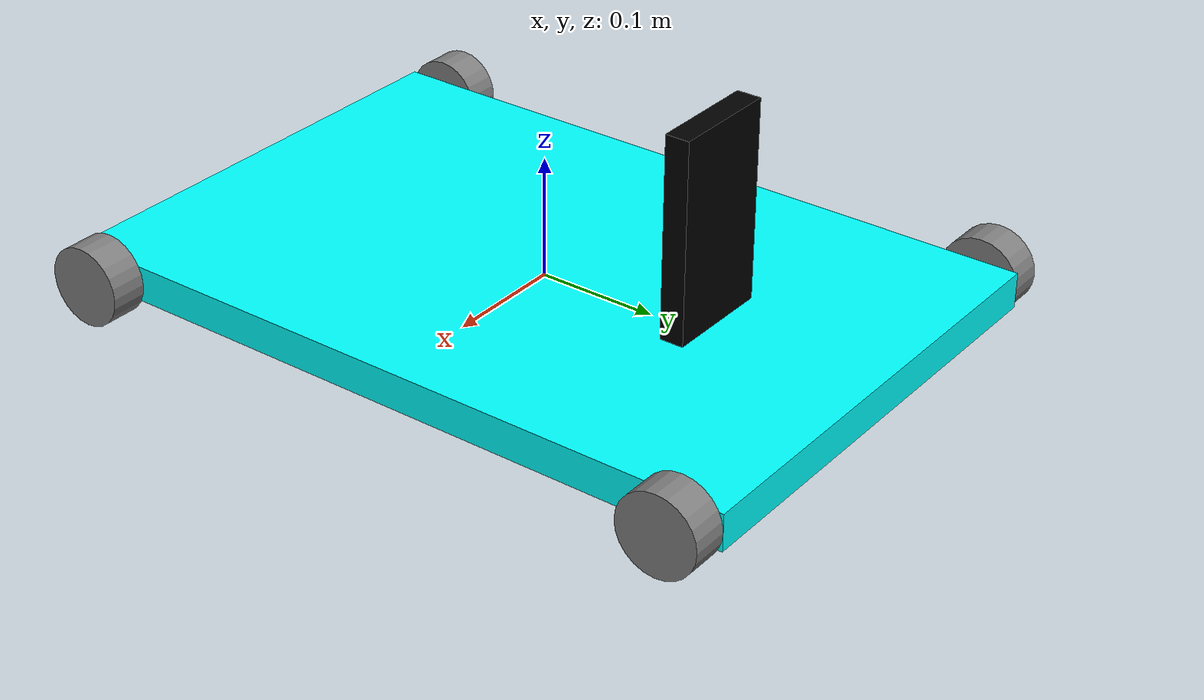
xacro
<?xml version="1.0"?>
<robot name="sam_bot" xmlns:xacro="http://ros.org/wiki/xacro">

  <!-- Define robot constants -->
  <xacro:property name="base_width" value="0.4"/>
  <xacro:property name="base_length" value="0.6"/>
  <xacro:property name="base_height" value="0.03"/>
  <xacro:property name="wheel_radius" value="0.033"/>
  <xacro:property name="wheel_width" value="0.03"/>

  <xacro:property name="iphone_height" value="0.165"/>
  <xacro:property name="iphone_width" value="0.02"/>
  <xacro:property name="iphone_length" value="0.09"/>

    <!-- Define intertial property macros  -->
  <xacro:macro name="box_inertia" params="m w h d">
    <inertial>
      <origin xyz="0 0 0" rpy="${pi/2} 0 ${pi/2}"/>
      <mass value="${m}"/>
      <inertia ixx="${(m/12) * (h*h + d*d)}" ixy="0.0" ixz="0.0" iyy="${(m/12) * (w*w + d*d)}" iyz="0.0" izz="${(m/12) * (w*w + h*h)}"/>
    </inertial>
  </xacro:macro>

  <xacro:macro name="cylinder_inertia" params="m r h">
    <inertial>
      <origin xyz="0 0 0" rpy="${pi/2} 0 0" />
      <mass value="${m}"/>
      <inertia ixx="${(m/12) * (3*r*r + h*h)}" ixy = "0" ixz = "0" iyy="${(m/12) * (3*r*r + h*h)}" iyz = "0" izz="${(m/2) * (r*r)}"/>
    </inertial>
  </xacro:macro>

    <!-- Robot Base -->
  <link name="base_link">
    <visual>
      <geometry>
        <box size="${base_width} ${base_length} ${base_height}"/>
      </geometry>
      <material name="Cyan">
        <color rgba="0 1.0 1.0 1.0"/>
      </material>
    </visual>
    <collision>
        <geometry>
          <box size="${base_width} ${base_length} ${base_height}"/>
        </geometry>
      </collision>

      <xacro:box_inertia m="15" w="${base_width}" d="${base_length}" h="${base_height}"/>
  </link>

  <!-- Robot Footprint -->

  <!-- Robot Footprint -->
  <link name="base_footprint"/>

  <joint name="base_joint" type="fixed">
    <parent link="base_link"/>
    <child link="base_footprint"/>
    <origin xyz="0.0 0.0 0.0" rpy="0 0 0"/>
  </joint>

  <!-- iphone mount -->
  <link name="iphone_link">
    <visual>
        <origin xyz="0 0 0" rpy="0 0 0"/>
        <geometry>
          <box size="${iphone_length} ${iphone_width}  ${iphone_height}"/>
        </geometry>
      <material name="blue">
        <color rgba="0 0 0 1"/>
      </material>
    </visual>

     <collision>
        <origin xyz="0 0 0" rpy="0 0 0"/>
        <geometry>
          <box size="${iphone_length} ${iphone_width}  ${iphone_height}"/>
        </geometry>
      </collision>

      <xacro:box_inertia m="5" w="${iphone_width}" d="${iphone_length}" h="${iphone_height}"/>

  </link>
  <joint name="iphone" type="fixed">
      <parent link="base_link"/>
      <child link="iphone_link"/>
      <origin xyz="0 ${base_length/4} ${iphone_height/2+base_height/2}" rpy="0 0 0"/>
  </joint>

  <!-- wheels -->
  <xacro:macro name="wheel" params="prefix x y z">
    <link name="${prefix}_link">
      <visual>
            <origin xyz="0 0 0" rpy="0 ${pi/2} 0"/>
            <geometry>
                <cylinder radius="${wheel_radius}" length="${wheel_width}"/>
            </geometry>

        <material name="Gray">
          <color rgba="0.5 0.5 0.5 1.0"/>
        </material>
      </visual>
    </link>

    <collision>
      <origin xyz="0 0 0" rpy="0 ${pi/2} 0"/>
      <geometry>
          <cylinder radius="${wheel_radius}" length="${wheel_width}"/>
      </geometry>
    </collision>
    <xacro:cylinder_inertia m="0.5" r="${wheel_radius}" h="${wheel_width}"/>

    <joint name="${prefix}_joint" type="continuous">
      <parent link="base_link"/>
      <child link="${prefix}_link"/>
      <origin xyz="${x} ${y} ${z}" rpy="0 0 0"/>
      <axis xyz="0 1 0"/>
    </joint>
  </xacro:macro>

  <xacro:wheel prefix="drivewhl_rear_left" x="${base_width/2+wheel_width/2}" y="${base_length/2 - wheel_radius}" z="0" />
  <xacro:wheel prefix="drivewhl_rear_right" x="${-1*(base_width/2+wheel_width/2)}" y="${base_length/2 - wheel_radius}" z="0" />
  <xacro:wheel prefix="drivewhl_front_left" x="${base_width/2+wheel_width/2}" y="${-1*(base_length/2 - wheel_radius)}" z="0" />
  <xacro:wheel prefix="drivewhl_front_right" x="${-1*(base_width/2+wheel_width/2)}" y="${-1*(base_length/2 - wheel_radius)}" z="0" />
</robot>
